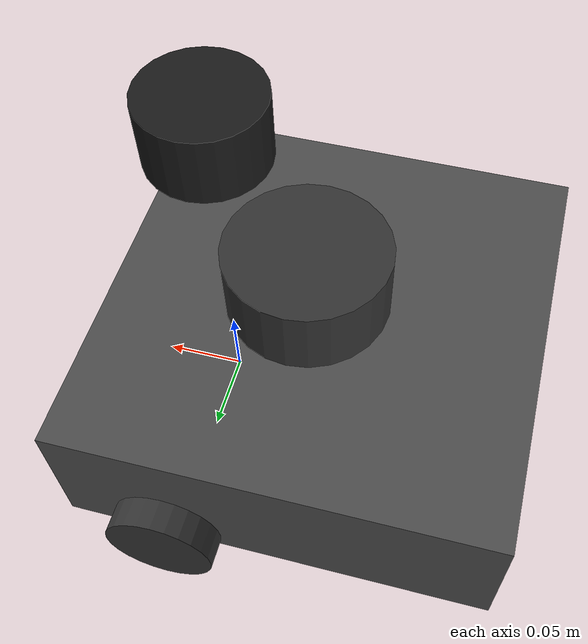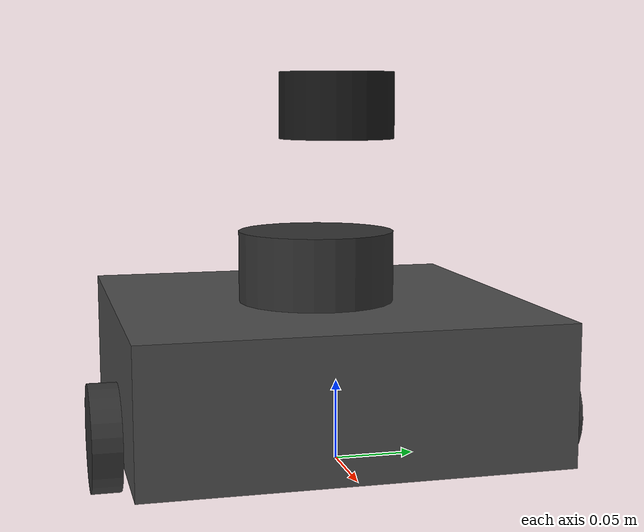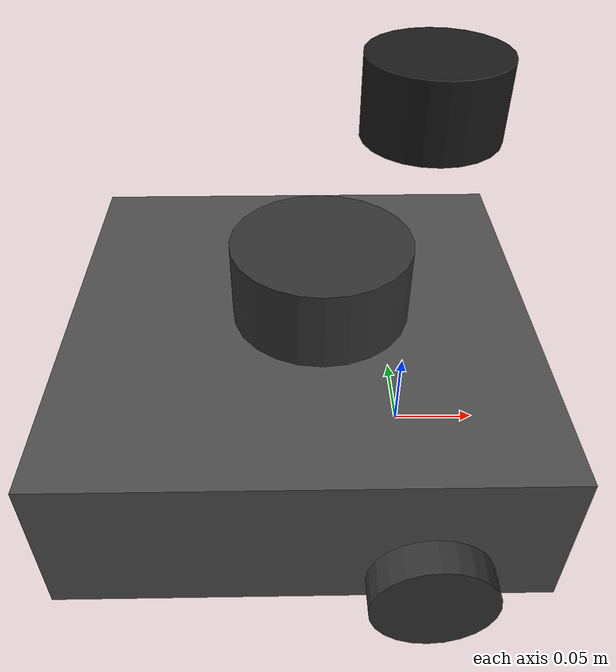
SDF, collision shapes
<?xml version="1.0" ?>
<sdf version="1.5">
  <model name="turtlebot3_waffle">
  <pose>0.0 0.0 0.0 0.0 0.0 0.0</pose>

    <link name="base_footprint"/>

    <link name="base_link">

      <inertial>
        <pose>-0.064 0 0.048 0 0 0</pose>
        <inertia>
          <ixx>4.2111447e-02</ixx>
          <ixy>0</ixy>
          <ixz>0</ixz>
          <iyy>4.2111447e-02</iyy>
          <iyz>0</iyz>
          <izz>7.5254874e-02</izz>
        </inertia>
        <mass>1.3729096e+00</mass>
      </inertial>

      <collision name="base_collision">
        <pose>-0.064 0 0.048 0 0 0</pose>
        <geometry>
          <box>
            <size>0.265 0.265 0.089</size>
          </box>
        </geometry>
      </collision>

      <visual name="base_visual">
        <pose>-0.064 0 0 0 0 0</pose>
        <geometry>
          <mesh>
            <uri>model://turtlebot3_common/meshes/bases/waffle_base.stl</uri>
            <scale>0.001 0.001 0.001</scale>
          </mesh>
        </geometry>
        <material>
          <ambient>0.3 0.3 0.3 1.0</ambient>
          <diffuse>0.3 0.3 0.3 1.0</diffuse>
        </material>
      </visual>
    </link>

    <link name="imu_link">
      <sensor name="tb3_imu" type="imu">
        <always_on>true</always_on>
        <update_rate>200</update_rate>
        <imu>
          <angular_velocity>
            <x>
              <noise type="gaussian">
                <mean>0.0</mean>
                <stddev>2e-4</stddev>
              </noise>
            </x>
            <y>
              <noise type="gaussian">
                <mean>0.0</mean>
                <stddev>2e-4</stddev>
              </noise>
            </y>
            <z>
              <noise type="gaussian">
                <mean>0.0</mean>
                <stddev>2e-4</stddev>
              </noise>
            </z>
          </angular_velocity>
          <linear_acceleration>
            <x>
              <noise type="gaussian">
                <mean>0.0</mean>
                <stddev>1.7e-2</stddev>
              </noise>
            </x>
            <y>
              <noise type="gaussian">
                <mean>0.0</mean>
                <stddev>1.7e-2</stddev>
              </noise>
            </y>
            <z>
              <noise type="gaussian">
                <mean>0.0</mean>
                <stddev>1.7e-2</stddev>
              </noise>
            </z>
          </linear_acceleration>
        </imu>
        <plugin name="turtlebot3_imu" filename="libgazebo_ros_imu_sensor.so">
          <ros>
            <remapping>~/out:=imu</remapping>
          </ros>
        </plugin>
      </sensor>
    </link>

    <link name="base_scan">
      <inertial>
        <pose>-0.052 0 0.111 0 0 0</pose>
        <inertia>
          <ixx>0.001</ixx>
          <ixy>0.000</ixy>
          <ixz>0.000</ixz>
          <iyy>0.001</iyy>
          <iyz>0.000</iyz>
          <izz>0.001</izz>
        </inertia>
        <mass>0.114</mass>
      </inertial>

      <collision name="lidar_sensor_collision">
        <pose>-0.052 0 0.111 0 0 0</pose>
        <geometry>
          <cylinder>
            <radius>0.0508</radius>
            <length>0.055</length>
          </cylinder>
        </geometry>
      </collision>

      <visual name="lidar_sensor_visual">
        <pose>-0.064 0 0.121 0 0 0</pose>
        <geometry>
          <mesh>
            <uri>model://turtlebot3_common/meshes/sensors/lds.stl</uri>
            <scale>0.001 0.001 0.001</scale>
          </mesh>
        </geometry>
        <material>
          <ambient>0.2 0.2 0.2 1.0</ambient>
          <diffuse>0.2 0.2 0.2 1.0</diffuse>
        </material>
      </visual>

      <sensor name="hls_lfcd_lds" type="ray">
        <always_on>true</always_on>
        <visualize>true</visualize>
        <pose>-0.064 0 0.121 0 0 0</pose>
        <update_rate>5</update_rate>
        <ray>
          <scan>
            <horizontal>
              <samples>360</samples>
              <resolution>1.000000</resolution>
              <min_angle>0.000000</min_angle>
              <max_angle>6.280000</max_angle>
            </horizontal>
          </scan>
          <range>
            <min>0.120000</min>
            <max>3.5</max>
            <resolution>0.015000</resolution>
          </range>
          <noise>
            <type>gaussian</type>
            <mean>0.0</mean>
            <stddev>0.01</stddev>
          </noise>
        </ray>
        <plugin name="turtlebot3_laserscan" filename="libgazebo_ros_ray_sensor.so">
          <ros>
            <remapping>~/out:=scan</remapping>
          </ros>
          <output_type>sensor_msgs/LaserScan</output_type>
          <frame_name>base_scan</frame_name>
        </plugin>
      </sensor>
    </link>

    <link name="lidar_3d_link">
      <pose>0 0 0.22 0 0 0</pose>
      <inertial>
        <mass>0.05</mass>
        <inertia>
          <ixx>0.0001</ixx>
          <iyy>0.0001</iyy>
          <izz>0.0001</izz>
          <ixy>0</ixy>
          <ixz>0</ixz>
          <iyz>0</iyz>
        </inertia>
      </inertial>

      <visual name="lidar_3d_visual">
        <geometry>
          <cylinder>
            <radius>0.035</radius>
            <length>0.04</length>
          </cylinder>
        </geometry>
        <material>
          <ambient>0.1 0.1 0.1 1</ambient>
          <diffuse>0.1 0.1 0.1 1</diffuse>
        </material>
      </visual>

      <collision name="lidar_3d_collision">
        <geometry>
          <cylinder>
            <radius>0.035</radius>
            <length>0.04</length>
          </cylinder>
        </geometry>
      </collision>

      <sensor name="lidar_3d_sensor" type="gpu_ray">
        <pose>0 0 0 0 0 0</pose>
        <always_on>true</always_on>
        <visualize>true</visualize>
        <update_rate>5</update_rate>
        <ray>
          <scan>
            <horizontal>
              <samples>360</samples>
              <resolution>1</resolution>
              <min_angle>-3.14159265</min_angle>
              <max_angle>3.14159265</max_angle>
            </horizontal>
            <vertical>
              <samples>16</samples>
              <resolution>1</resolution>
              <min_angle>-0.35</min_angle>
              <max_angle>0.35</max_angle>
            </vertical>
          </scan>
          <range>
            <min>0.15</min>
            <max>12.0</max>
            <resolution>0.02</resolution>
          </range>
          <noise>
            <type>gaussian</type>
            <mean>0.0</mean>
            <stddev>0.01</stddev>
          </noise>
        </ray>

        <plugin name="lidar_3d_controller" filename="libgazebo_ros_ray_sensor.so">
          <ros>
            <remapping>~/out:=/lidar_3d/points</remapping>
          </ros>
          <output_type>sensor_msgs/PointCloud2</output_type>
          <frame_name>lidar_3d_link</frame_name>
        </plugin>
      </sensor>
    </link>

    <joint name="lidar_3d_joint" type="fixed">
      <parent>base_link</parent>
      <child>lidar_3d_link</child>
      <pose>0 0 0 0 0 0</pose>
    </joint>

    <link name="wheel_left_link">

      <inertial>
        <pose>0.0 0.144 0.023 -1.57 0 0</pose>
        <inertia>
          <ixx>1.1175580e-05</ixx>
          <ixy>-4.2369783e-11</ixy>
          <ixz>-5.9381719e-09</ixz>
          <iyy>1.1192413e-05</iyy>
          <iyz>-1.4400107e-11</iyz>
          <izz>2.0712558e-05</izz>
        </inertia>
        <mass>0.1</mass>
      </inertial>

      <collision name="wheel_left_collision">
        <pose>0.0 0.144 0.023 -1.57 0 0</pose>
        <geometry>
          <cylinder>
            <radius>0.033</radius>
            <length>0.018</length>
          </cylinder>
        </geometry>
        <surface>
          <!-- This friction pamareter don't contain reliable data!! -->
          <friction>
            <ode>
              <mu>100000.0</mu>
              <mu2>100000.0</mu2>
              <fdir1>0 0 0</fdir1>
              <slip1>0.0</slip1>
              <slip2>0.0</slip2>
            </ode>
          </friction>
          <contact>
            <ode>
              <soft_cfm>0</soft_cfm>
              <soft_erp>0.2</soft_erp>
              <kp>1e+5</kp>
              <kd>1</kd>
              <max_vel>0.01</max_vel>
              <min_depth>0.001</min_depth>
            </ode>
          </contact>
        </surface>
      </collision>

      <visual name="wheel_left_visual">
        <pose>0.0 0.144 0.023 0 0 0</pose>
        <geometry>
          <mesh>
            <uri>model://turtlebot3_common/meshes/wheels/right_tire.stl</uri>
            <scale>0.001 0.001 0.001</scale>
          </mesh>
        </geometry>
        <material>
          <ambient>0.2 0.2 0.2 1.0</ambient>
          <diffuse>0.2 0.2 0.2 1.0</diffuse>
        </material>
      </visual>
    </link>

    <link name="wheel_right_link">

      <inertial>
        <pose>0.0 -0.144 0.023 -1.57 0 0</pose>
        <inertia>
          <ixx>1.1175580e-05</ixx>
          <ixy>-4.2369783e-11</ixy>
          <ixz>-5.9381719e-09</ixz>
          <iyy>1.1192413e-05</iyy>
          <iyz>-1.4400107e-11</iyz>
          <izz>2.0712558e-05</izz>
        </inertia>
        <mass>0.1</mass>
      </inertial>

      <collision name="wheel_right_collision">
        <pose>0.0 -0.144 0.023 -1.57 0 0</pose>
        <geometry>
          <cylinder>
            <radius>0.033</radius>
            <length>0.018</length>
          </cylinder>
        </geometry>
        <surface>
          <!-- This friction pamareter don't contain reliable data!! -->
          <friction>
            <ode>
              <mu>100000.0</mu>
              <mu2>100000.0</mu2>
              <fdir1>0 0 0</fdir1>
              <slip1>0.0</slip1>
              <slip2>0.0</slip2>
            </ode>
          </friction>
          <contact>
            <ode>
              <soft_cfm>0</soft_cfm>
              <soft_erp>0.2</soft_erp>
              <kp>1e+5</kp>
              <kd>1</kd>
              <max_vel>0.01</max_vel>
              <min_depth>0.001</min_depth>
            </ode>
          </contact>
        </surface>
      </collision>

      <visual name="wheel_right_visual">
        <pose>0.0 -0.144 0.023 0 0 0</pose>
        <geometry>
          <mesh>
            <uri>model://turtlebot3_common/meshes/wheels/left_tire.stl</uri>
            <scale>0.001 0.001 0.001</scale>
          </mesh>
        </geometry>
        <material>
          <ambient>0.2 0.2 0.2 1.0</ambient>
          <diffuse>0.2 0.2 0.2 1.0</diffuse>
        </material>
      </visual>
    </link>

    <link name='caster_back_right_link'>
      <pose>-0.177 -0.064 -0.004 -1.57 0 0</pose>
      <inertial>
        <mass>0.001</mass>
        <inertia>
          <ixx>0.00001</ixx>
          <ixy>0.000</ixy>
          <ixz>0.000</ixz>
          <iyy>0.00001</iyy>
          <iyz>0.000</iyz>
          <izz>0.00001</izz>
        </inertia>
      </inertial>
      <collision name='collision'>
        <geometry>
          <sphere>
            <radius>0.005000</radius>
          </sphere>
        </geometry>
        <surface>
          <contact>
            <ode>
              <soft_cfm>0</soft_cfm>
              <soft_erp>0.2</soft_erp>
              <kp>1e+5</kp>
              <kd>1</kd>
              <max_vel>0.01</max_vel>
              <min_depth>0.001</min_depth>
            </ode>
          </contact>
        </surface>
      </collision>
    </link>

    <link name='caster_back_left_link'>
      <pose>-0.177 0.064 -0.004 -1.57 0 0</pose>
      <inertial>
        <mass>0.001</mass>
        <inertia>
          <ixx>0.00001</ixx>
          <ixy>0.000</ixy>
          <ixz>0.000</ixz>
          <iyy>0.00001</iyy>
          <iyz>0.000</iyz>
          <izz>0.00001</izz>
        </inertia>
      </inertial>
      <collision name='collision'>
        <geometry>
          <sphere>
            <radius>0.005000</radius>
          </sphere>
        </geometry>
        <surface>
          <contact>
            <ode>
              <soft_cfm>0</soft_cfm>
              <soft_erp>0.2</soft_erp>
              <kp>1e+5</kp>
              <kd>1</kd>
              <max_vel>0.01</max_vel>
              <min_depth>0.001</min_depth>
            </ode>
          </contact>
        </surface>
      </collision>
    </link>

    <link name="camera_link"/>

    <link name="camera_rgb_frame">
      <inertial>
        <pose>0.069 -0.047 0.107 0 0 0</pose>
        <inertia>
          <ixx>0.001</ixx>
          <ixy>0.000</ixy>
          <ixz>0.000</ixz>
          <iyy>0.001</iyy>
          <iyz>0.000</iyz>
          <izz>0.001</izz>
        </inertia>
        <mass>0.035</mass>
      </inertial>

      <pose>0.069 -0.047 0.107 0 0 0</pose>
      <sensor name="camera" type="depth">
        <always_on>true</always_on>
        <visualize>true</visualize>
        <update_rate>30</update_rate>
        <camera name="intel_realsense_r200">
          <horizontal_fov>1.02974</horizontal_fov>
          <image>
            <width>1920</width>
            <height>1080</height>
            <format>R8G8B8</format>
          </image>
          <clip>
            <near>0.02</near>
            <far>300</far>
          </clip>
          <noise>
            <type>gaussian</type>
            <mean>0.0</mean>
            <stddev>0.007</stddev>
          </noise>
        </camera>
          <plugin name="camera_driver" filename="libgazebo_ros_camera.so">
            <ros>
            </ros>
          </plugin>
      </sensor>
    </link>

    <joint name="base_joint" type="fixed">
      <parent>base_footprint</parent>
      <child>base_link</child>
      <pose>0.0 0.0 0.010 0 0 0</pose>
    </joint>

    <joint name="wheel_left_joint" type="revolute">
      <parent>base_link</parent>
      <child>wheel_left_link</child>
      <pose>0.0 0.144 0.023 -1.57 0 0</pose>
      <axis>
        <xyz>0 0 1</xyz>
      </axis>
    </joint>

    <joint name="wheel_right_joint" type="revolute">
      <parent>base_link</parent>
      <child>wheel_right_link</child>
      <pose>0.0 -0.144 0.023 -1.57 0 0</pose>
      <axis>
        <xyz>0 0 1</xyz>
      </axis>
    </joint>

    <joint name='caster_back_right_joint' type='ball'>
      <parent>base_link</parent>
      <child>caster_back_right_link</child>
    </joint>

    <joint name='caster_back_left_joint' type='ball'>
      <parent>base_link</parent>
      <child>caster_back_left_link</child>
    </joint>

    <joint name="imu_joint" type="fixed">
      <parent>base_link</parent>
      <child>imu_link</child>
      <pose>-0.032 0 0.068 0 0 0</pose>
      <axis>
        <xyz>0 0 1</xyz>
      </axis>
    </joint>

    <joint name="lidar_joint" type="fixed">
      <parent>base_link</parent>
      <child>base_scan</child>
      <pose>-0.064 0 0.121 0 0 0</pose>
      <axis>
        <xyz>0 0 1</xyz>
      </axis>
    </joint>

    <joint name="camera_joint" type="fixed">
      <parent>base_link</parent>
      <child>camera_link</child>
      <pose>0.064 -0.065 0.094 0 0 0</pose>
      <axis>
        <xyz>0 0 1</xyz>
      </axis>
    </joint>

    <joint name="camera_rgb_joint" type="fixed">
      <parent>camera_link</parent>
      <child>camera_rgb_frame</child>
      <pose>0.005 0.018 0.013 0 0 0</pose>
      <axis>
        <xyz>0 0 1</xyz>
      </axis>
    </joint>

    <plugin name="turtlebot3_diff_drive" filename="libgazebo_ros_diff_drive.so">

      <ros>
      </ros>

      <update_rate>30</update_rate>

      <!-- wheels -->
      <left_joint>wheel_left_joint</left_joint>
      <right_joint>wheel_right_joint</right_joint>

      <!-- kinematics -->
      <wheel_separation>0.287</wheel_separation>
      <wheel_diameter>0.066</wheel_diameter>

      <!-- limits -->
      <max_wheel_torque>20</max_wheel_torque>
      <max_wheel_acceleration>1.0</max_wheel_acceleration>

      <command_topic>cmd_vel</command_topic>

      <!-- output -->
      <publish_odom>true</publish_odom>
      <publish_odom_tf>true</publish_odom_tf>
      <publish_wheel_tf>false</publish_wheel_tf>

      <odometry_source>encoder</odometry_source>

      <odometry_topic>odom</odometry_topic>
      <odometry_frame>odom</odometry_frame>
      <robot_base_frame>base_footprint</robot_base_frame>

    </plugin>

    <plugin name="turtlebot3_joint_state" filename="libgazebo_ros_joint_state_publisher.so">
      <ros>
        <remapping>~/out:=joint_states</remapping>
      </ros>
      <update_rate>30</update_rate>
      <joint_name>wheel_left_joint</joint_name>
      <joint_name>wheel_right_joint</joint_name>
    </plugin>

  </model>
</sdf>
